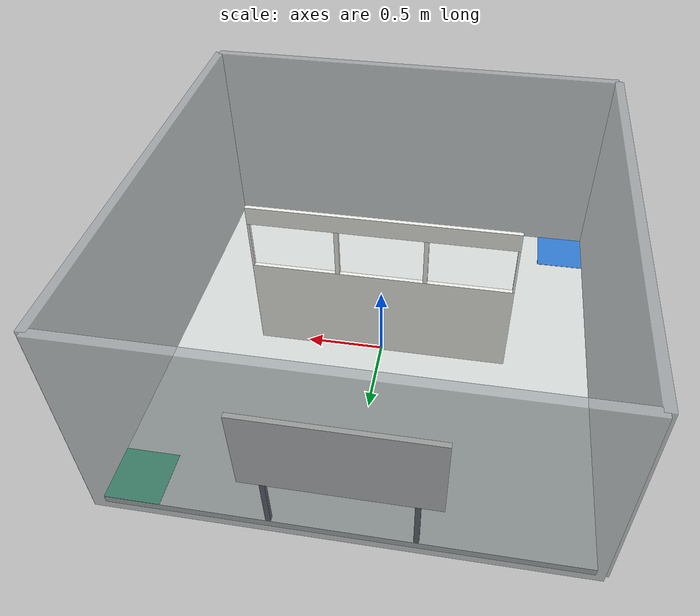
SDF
<?xml version='1.0' encoding='utf-8'?>
<sdf version="1.6">
  <world name="tello_final">
    <gravity>0 0 -9.80665</gravity>
    <physics name="ode" type="ode">
      <max_step_size>0.001</max_step_size>
      <real_time_update_rate>1000</real_time_update_rate>
    </physics>
    <include>
      <uri>model://sun</uri>
    </include>
    <model name="floor">
      <static>true</static>
      <pose>0.000000 0.000000 -0.025000 0.000000 0.000000 0.000000</pose>
      <link name="body">
        <collision name="collision">
          <geometry>
            <box>
              <size>2.750000 2.750000 0.050000</size>
            </box>
          </geometry>
        </collision>
        <visual name="visual">
          <geometry>
            <box>
              <size>2.750000 2.750000 0.050000</size>
            </box>
          </geometry>
          <material>
            <ambient>0.840000 0.860000 0.850000 1.000000</ambient>
            <diffuse>0.840000 0.860000 0.850000 1.000000</diffuse>
          </material>
        </visual>
      </link>
    </model>
    <model name="boundary_south">
      <static>true</static>
      <pose>0.000000 -1.402500 0.687500 0.000000 0.000000 0.000000</pose>
      <link name="body">
        <collision name="collision">
          <geometry>
            <box>
              <size>2.805000 0.055000 1.375000</size>
            </box>
          </geometry>
        </collision>
        <visual name="visual">
          <geometry>
            <box>
              <size>2.805000 0.055000 1.375000</size>
            </box>
          </geometry>
          <transparency>0.45</transparency>
          <material>
            <ambient>0.580000 0.610000 0.630000 0.550000</ambient>
            <diffuse>0.580000 0.610000 0.630000 0.550000</diffuse>
          </material>
        </visual>
      </link>
    </model>
    <model name="boundary_north">
      <static>true</static>
      <pose>0.000000 1.402500 0.687500 0.000000 0.000000 0.000000</pose>
      <link name="body">
        <collision name="collision">
          <geometry>
            <box>
              <size>2.805000 0.055000 1.375000</size>
            </box>
          </geometry>
        </collision>
        <visual name="visual">
          <geometry>
            <box>
              <size>2.805000 0.055000 1.375000</size>
            </box>
          </geometry>
          <transparency>0.45</transparency>
          <material>
            <ambient>0.580000 0.610000 0.630000 0.550000</ambient>
            <diffuse>0.580000 0.610000 0.630000 0.550000</diffuse>
          </material>
        </visual>
      </link>
    </model>
    <model name="boundary_west">
      <static>true</static>
      <pose>-1.402500 0.000000 0.687500 0.000000 0.000000 0.000000</pose>
      <link name="body">
        <collision name="collision">
          <geometry>
            <box>
              <size>0.055000 2.805000 1.375000</size>
            </box>
          </geometry>
        </collision>
        <visual name="visual">
          <geometry>
            <box>
              <size>0.055000 2.805000 1.375000</size>
            </box>
          </geometry>
          <transparency>0.45</transparency>
          <material>
            <ambient>0.580000 0.610000 0.630000 0.550000</ambient>
            <diffuse>0.580000 0.610000 0.630000 0.550000</diffuse>
          </material>
        </visual>
      </link>
    </model>
    <model name="boundary_east">
      <static>true</static>
      <pose>1.402500 0.000000 0.687500 0.000000 0.000000 0.000000</pose>
      <link name="body">
        <collision name="collision">
          <geometry>
            <box>
              <size>0.055000 2.805000 1.375000</size>
            </box>
          </geometry>
        </collision>
        <visual name="visual">
          <geometry>
            <box>
              <size>0.055000 2.805000 1.375000</size>
            </box>
          </geometry>
          <transparency>0.45</transparency>
          <material>
            <ambient>0.580000 0.610000 0.630000 0.550000</ambient>
            <diffuse>0.580000 0.610000 0.630000 0.550000</diffuse>
          </material>
        </visual>
      </link>
    </model>
    <model name="takeoff_pad">
      <static>true</static>
      <pose>-1.210000 -1.210000 0.001000 0.000000 0.000000 0.000000</pose>
      <link name="body">
        <visual name="visual">
          <geometry>
            <box>
              <size>0.330000 0.330000 0.002000</size>
            </box>
          </geometry>
          <material>
            <ambient>0.190000 0.480000 0.820000 1.000000</ambient>
            <diffuse>0.190000 0.480000 0.820000 1.000000</diffuse>
          </material>
        </visual>
      </link>
    </model>
    <model name="landing_pad">
      <static>true</static>
      <pose>1.210000 1.210000 0.001000 0.000000 0.000000 0.000000</pose>
      <link name="body">
        <visual name="visual">
          <geometry>
            <box>
              <size>0.330000 0.330000 0.002000</size>
            </box>
          </geometry>
          <material>
            <ambient>0.150000 0.690000 0.480000 1.000000</ambient>
            <diffuse>0.150000 0.690000 0.480000 1.000000</diffuse>
          </material>
        </visual>
      </link>
    </model>
    <model name="window_wall_bottom">
      <static>true</static>
      <pose>0.000000 0.000000 0.324500 0.000000 0.000000 0.000000</pose>
      <link name="body">
        <collision name="collision">
          <geometry>
            <box>
              <size>1.650000 0.027500 0.649000</size>
            </box>
          </geometry>
        </collision>
        <visual name="visual">
          <geometry>
            <box>
              <size>1.650000 0.027500 0.649000</size>
            </box>
          </geometry>
          <material>
            <ambient>0.930000 0.930000 0.910000 1.000000</ambient>
            <diffuse>0.930000 0.930000 0.910000 1.000000</diffuse>
          </material>
        </visual>
      </link>
    </model>
    <model name="window_wall_top">
      <static>true</static>
      <pose>0.000000 0.000000 1.039500 0.000000 0.000000 0.000000</pose>
      <link name="body">
        <collision name="collision">
          <geometry>
            <box>
              <size>1.650000 0.027500 0.121000</size>
            </box>
          </geometry>
        </collision>
        <visual name="visual">
          <geometry>
            <box>
              <size>1.650000 0.027500 0.121000</size>
            </box>
          </geometry>
          <material>
            <ambient>0.930000 0.930000 0.910000 1.000000</ambient>
            <diffuse>0.930000 0.930000 0.910000 1.000000</diffuse>
          </material>
        </visual>
      </link>
    </model>
    <model name="window_post_0">
      <static>true</static>
      <pose>-0.818125 0.000000 0.814000 0.000000 0.000000 0.000000</pose>
      <link name="body">
        <collision name="collision">
          <geometry>
            <box>
              <size>0.013750 0.027500 0.330000</size>
            </box>
          </geometry>
        </collision>
        <visual name="visual">
          <geometry>
            <box>
              <size>0.013750 0.027500 0.330000</size>
            </box>
          </geometry>
          <material>
            <ambient>0.930000 0.930000 0.910000 1.000000</ambient>
            <diffuse>0.930000 0.930000 0.910000 1.000000</diffuse>
          </material>
        </visual>
      </link>
    </model>
    <model name="window_post_1">
      <static>true</static>
      <pose>-0.275000 0.000000 0.814000 0.000000 0.000000 0.000000</pose>
      <link name="body">
        <collision name="collision">
          <geometry>
            <box>
              <size>0.027500 0.027500 0.330000</size>
            </box>
          </geometry>
        </collision>
        <visual name="visual">
          <geometry>
            <box>
              <size>0.027500 0.027500 0.330000</size>
            </box>
          </geometry>
          <material>
            <ambient>0.930000 0.930000 0.910000 1.000000</ambient>
            <diffuse>0.930000 0.930000 0.910000 1.000000</diffuse>
          </material>
        </visual>
      </link>
    </model>
    <model name="window_post_2">
      <static>true</static>
      <pose>0.275000 0.000000 0.814000 0.000000 0.000000 0.000000</pose>
      <link name="body">
        <collision name="collision">
          <geometry>
            <box>
              <size>0.027500 0.027500 0.330000</size>
            </box>
          </geometry>
        </collision>
        <visual name="visual">
          <geometry>
            <box>
              <size>0.027500 0.027500 0.330000</size>
            </box>
          </geometry>
          <material>
            <ambient>0.930000 0.930000 0.910000 1.000000</ambient>
            <diffuse>0.930000 0.930000 0.910000 1.000000</diffuse>
          </material>
        </visual>
      </link>
    </model>
    <model name="window_post_3">
      <static>true</static>
      <pose>0.818125 0.000000 0.814000 0.000000 0.000000 0.000000</pose>
      <link name="body">
        <collision name="collision">
          <geometry>
            <box>
              <size>0.013750 0.027500 0.330000</size>
            </box>
          </geometry>
        </collision>
        <visual name="visual">
          <geometry>
            <box>
              <size>0.013750 0.027500 0.330000</size>
            </box>
          </geometry>
          <material>
            <ambient>0.930000 0.930000 0.910000 1.000000</ambient>
            <diffuse>0.930000 0.930000 0.910000 1.000000</diffuse>
          </material>
        </visual>
      </link>
    </model>
    <model name="whiteboard">
      <static>true</static>
      <pose>0.000000 1.358500 0.627000 0.000000 0.000000 0.000000</pose>
      <link name="body">
        <collision name="collision">
          <geometry>
            <box>
              <size>1.100000 0.030000 0.550000</size>
            </box>
          </geometry>
        </collision>
        <visual name="visual">
          <geometry>
            <box>
              <size>1.100000 0.030000 0.550000</size>
            </box>
          </geometry>
          <material>
            <ambient>0.960000 0.960000 0.940000 1.000000</ambient>
            <diffuse>0.960000 0.960000 0.940000 1.000000</diffuse>
          </material>
        </visual>
      </link>
    </model>
    <model name="board_leg_-0.75">
      <static>true</static>
      <pose>-0.41250000000000003 1.3585 0.176 0.0 0.0 0.0</pose>
      <link name="body">
        <collision name="collision">
          <geometry>
            <box>
              <size>0.030000 0.030000 0.352000</size>
            </box>
          </geometry>
        </collision>
        <visual name="visual">
          <geometry>
            <box>
              <size>0.030000 0.030000 0.352000</size>
            </box>
          </geometry>
          <material>
            <ambient>0.220000 0.250000 0.290000 1.000000</ambient>
            <diffuse>0.220000 0.250000 0.290000 1.000000</diffuse>
          </material>
        </visual>
      </link>
    </model>
    <model name="board_leg_0.75">
      <static>true</static>
      <pose>0.41250000000000003 1.3585 0.176 0.0 0.0 0.0</pose>
      <link name="body">
        <collision name="collision">
          <geometry>
            <box>
              <size>0.030000 0.030000 0.352000</size>
            </box>
          </geometry>
        </collision>
        <visual name="visual">
          <geometry>
            <box>
              <size>0.030000 0.030000 0.352000</size>
            </box>
          </geometry>
          <material>
            <ambient>0.220000 0.250000 0.290000 1.000000</ambient>
            <diffuse>0.220000 0.250000 0.290000 1.000000</diffuse>
          </material>
        </visual>
      </link>
    </model>
    <model name="lamp_socket_0">
      <static>true</static>
      <pose>-0.412500 1.331500 0.833250 1.570796 0.000000 0.000000</pose>
      <link name="body">
        <visual name="visual">
          <geometry>
            <cylinder>
              <radius>0.020625000000000004</radius>
              <length>0.002</length>
            </cylinder>
          </geometry>
          <material>
            <ambient>0.250000 0.270000 0.290000 1.000000</ambient>
            <diffuse>0.250000 0.270000 0.290000 1.000000</diffuse>
          </material>
        </visual>
      </link>
    </model>
    <model name="lamp_socket_1">
      <static>true</static>
      <pose>-0.412500 1.331500 0.627000 1.570796 0.000000 0.000000</pose>
      <link name="body">
        <visual name="visual">
          <geometry>
            <cylinder>
              <radius>0.020625000000000004</radius>
              <length>0.002</length>
            </cylinder>
          </geometry>
          <material>
            <ambient>0.250000 0.270000 0.290000 1.000000</ambient>
            <diffuse>0.250000 0.270000 0.290000 1.000000</diffuse>
          </material>
        </visual>
      </link>
    </model>
    <model name="lamp_socket_2">
      <static>true</static>
      <pose>-0.412500 1.331500 0.420750 1.570796 0.000000 0.000000</pose>
      <link name="body">
        <visual name="visual">
          <geometry>
            <cylinder>
              <radius>0.020625000000000004</radius>
              <length>0.002</length>
            </cylinder>
          </geometry>
          <material>
            <ambient>0.250000 0.270000 0.290000 1.000000</ambient>
            <diffuse>0.250000 0.270000 0.290000 1.000000</diffuse>
          </material>
        </visual>
      </link>
    </model>
    <model name="lamp_socket_3">
      <static>true</static>
      <pose>0.000000 1.331500 0.833250 1.570796 0.000000 0.000000</pose>
      <link name="body">
        <visual name="visual">
          <geometry>
            <cylinder>
              <radius>0.020625000000000004</radius>
              <length>0.002</length>
            </cylinder>
          </geometry>
          <material>
            <ambient>0.250000 0.270000 0.290000 1.000000</ambient>
            <diffuse>0.250000 0.270000 0.290000 1.000000</diffuse>
          </material>
        </visual>
      </link>
    </model>
    <model name="lamp_socket_4">
      <static>true</static>
      <pose>0.000000 1.331500 0.627000 1.570796 0.000000 0.000000</pose>
      <link name="body">
        <visual name="visual">
          <geometry>
            <cylinder>
              <radius>0.020625000000000004</radius>
              <length>0.002</length>
            </cylinder>
          </geometry>
          <material>
            <ambient>0.250000 0.270000 0.290000 1.000000</ambient>
            <diffuse>0.250000 0.270000 0.290000 1.000000</diffuse>
          </material>
        </visual>
      </link>
    </model>
    <model name="lamp_socket_5">
      <static>true</static>
      <pose>0.000000 1.331500 0.420750 1.570796 0.000000 0.000000</pose>
      <link name="body">
        <visual name="visual">
          <geometry>
            <cylinder>
              <radius>0.020625000000000004</radius>
              <length>0.002</length>
            </cylinder>
          </geometry>
          <material>
            <ambient>0.250000 0.270000 0.290000 1.000000</ambient>
            <diffuse>0.250000 0.270000 0.290000 1.000000</diffuse>
          </material>
        </visual>
      </link>
    </model>
    <model name="lamp_socket_6">
      <static>true</static>
      <pose>0.412500 1.331500 0.833250 1.570796 0.000000 0.000000</pose>
      <link name="body">
        <visual name="visual">
          <geometry>
            <cylinder>
              <radius>0.020625000000000004</radius>
              <length>0.002</length>
            </cylinder>
          </geometry>
          <material>
            <ambient>0.250000 0.270000 0.290000 1.000000</ambient>
            <diffuse>0.250000 0.270000 0.290000 1.000000</diffuse>
          </material>
        </visual>
      </link>
    </model>
    <model name="lamp_socket_7">
      <static>true</static>
      <pose>0.412500 1.331500 0.627000 1.570796 0.000000 0.000000</pose>
      <link name="body">
        <visual name="visual">
          <geometry>
            <cylinder>
              <radius>0.020625000000000004</radius>
              <length>0.002</length>
            </cylinder>
          </geometry>
          <material>
            <ambient>0.250000 0.270000 0.290000 1.000000</ambient>
            <diffuse>0.250000 0.270000 0.290000 1.000000</diffuse>
          </material>
        </visual>
      </link>
    </model>
    <model name="lamp_socket_8">
      <static>true</static>
      <pose>0.412500 1.331500 0.420750 1.570796 0.000000 0.000000</pose>
      <link name="body">
        <visual name="visual">
          <geometry>
            <cylinder>
              <radius>0.020625000000000004</radius>
              <length>0.002</length>
            </cylinder>
          </geometry>
          <material>
            <ambient>0.250000 0.270000 0.290000 1.000000</ambient>
            <diffuse>0.250000 0.270000 0.290000 1.000000</diffuse>
          </material>
        </visual>
      </link>
    </model>
  </world>
</sdf>
